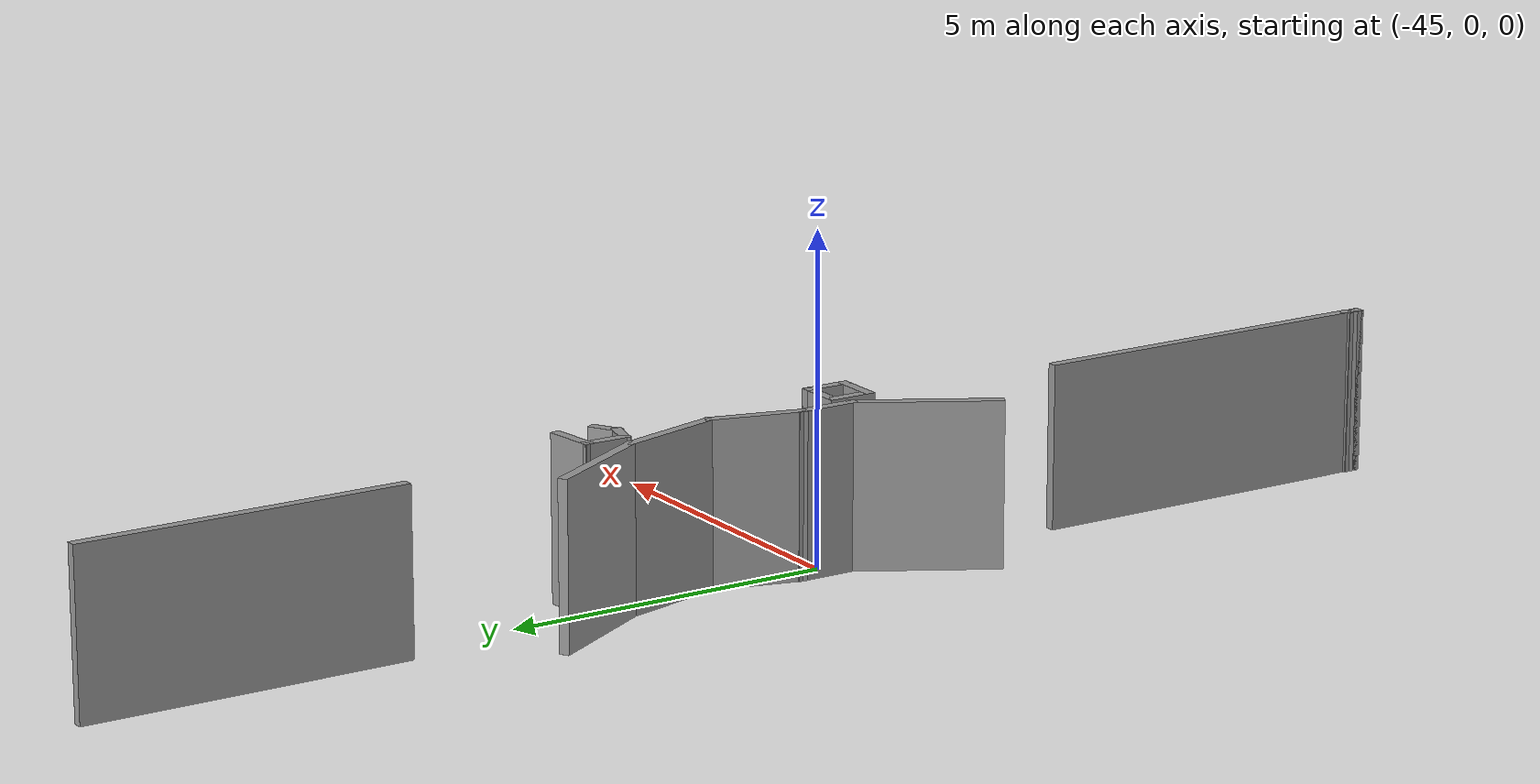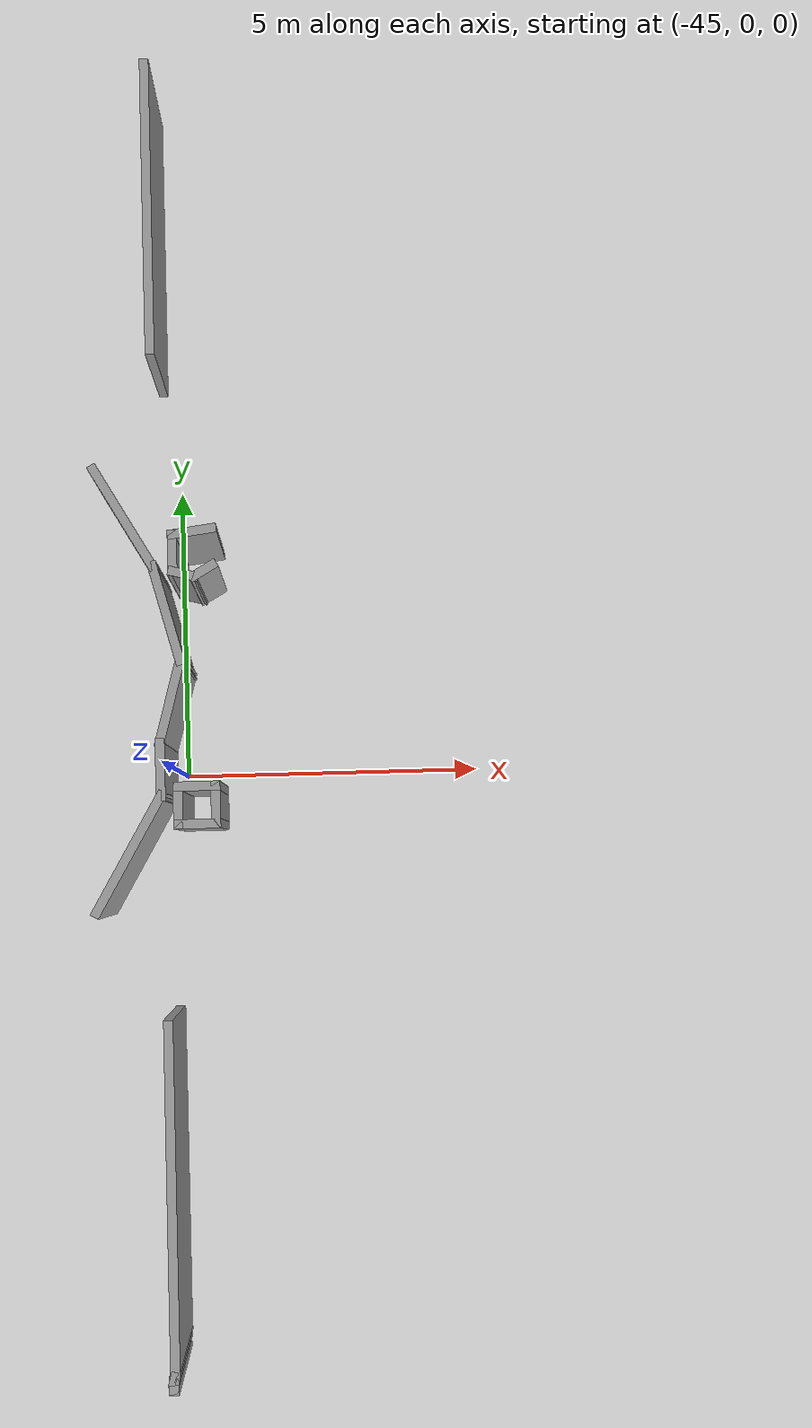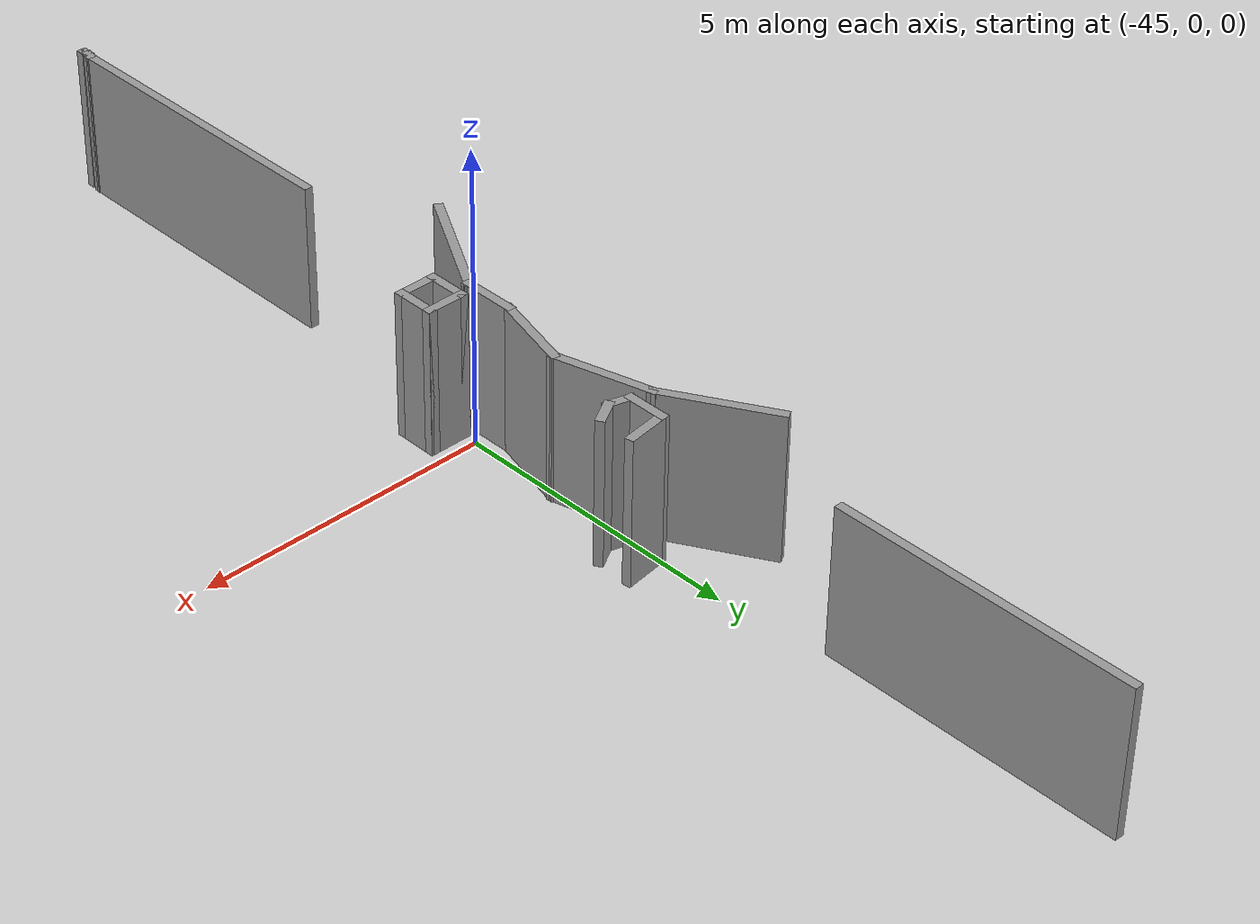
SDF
<sdf version="1.7">
 <model name="TD">
  <pose>-6.31602 -6.69767 0 0 -0 0</pose>
  <link name="Wall_123">
   <collision name="Wall_123_Collision">
    <geometry><box><size>5.5 0.15 2.5</size></box></geometry>
    <pose>0 0 1.25 0 -0 0</pose>
   </collision>
   <visual name="Wall_123_Visual">
    <pose>0 0 1.25 0 -0 0</pose>
    <geometry><box><size>5.5 0.15 2.5</size></box></geometry>
    <material>
     <script><uri>file://media/materials/scripts/gazebo.material</uri><name>Gazebo/Grey</name></script>
     <ambient>1 1 1 1</ambient>
    </material>
    <meta><layer>0</layer></meta>
   </visual>
   <pose>-38.9073 0.02178 0 0 -0 -1.5708</pose>
  </link>
  <link name="Wall_124">
   <collision name="Wall_124_Collision">
    <geometry><box><size>0.25 0.15 2.5</size></box></geometry>
    <pose>0 0 1.25 0 -0 0</pose>
   </collision>
   <visual name="Wall_124_Visual">
    <pose>0 0 1.25 0 -0 0</pose>
    <geometry><box><size>0.25 0.15 2.5</size></box></geometry>
    <material>
     <script><uri>file://media/materials/scripts/gazebo.material</uri><name>Gazebo/Grey</name></script>
     <ambient>1 1 1 1</ambient>
    </material>
    <meta><layer>0</layer></meta>
   </visual>
   <pose>-38.9202 -2.70152 0 0 -0 -1.8326</pose>
  </link>
  <link name="Wall_132">
   <collision name="Wall_132_Collision">
    <geometry><box><size>0.25 0.15 2.5</size></box></geometry>
    <pose>0 0 1.25 0 -0 0</pose>
   </collision>
   <visual name="Wall_132_Visual">
    <pose>0 0 1.25 0 -0 0</pose>
    <geometry><box><size>0.25 0.15 2.5</size></box></geometry>
    <material>
     <script><uri>file://media/materials/scripts/gazebo.material</uri><name>Gazebo/Grey</name></script>
     <ambient>1 1 1 1</ambient>
    </material>
    <meta><layer>0</layer></meta>
   </visual>
   <pose>-38.9202 -2.70152 0 0 -0 -1.8326</pose>
  </link>
  <link name="Wall_133">
   <collision name="Wall_133_Collision">
    <geometry><box><size>0.25 0.15 2.5</size></box></geometry>
    <pose>0 0 1.25 0 -0 0</pose>
   </collision>
   <visual name="Wall_133_Visual">
    <pose>0 0 1.25 0 -0 0</pose>
    <geometry><box><size>0.25 0.15 2.5</size></box></geometry>
    <material>
     <script><uri>file://media/materials/scripts/gazebo.material</uri><name>Gazebo/Grey</name></script>
     <ambient>1 1 1 1</ambient>
    </material>
    <meta><layer>0</layer></meta>
   </visual>
   <pose>-38.9332 -2.79981 0 0 -0 -1.5708</pose>
  </link>
  <link name="Wall_134">
   <collision name="Wall_134_Collision">
    <geometry><box><size>0.16 0.15 2.5</size></box></geometry>
    <pose>0 0 1.25 0 -0 0</pose>
   </collision>
   <visual name="Wall_134_Visual">
    <pose>0 0 1.25 0 -0 0</pose>
    <geometry><box><size>0.16 0.15 2.5</size></box></geometry>
    <material>
     <script><uri>file://media/materials/scripts/gazebo.material</uri><name>Gazebo/Grey</name></script>
     <ambient>1 1 1 1</ambient>
    </material>
    <meta><layer>0</layer></meta>
   </visual>
   <pose>-38.9282 -2.84981 0 0 -0 0</pose>
  </link>
  <link name="Wall_158">
   <collision name="Wall_158_Collision">
    <geometry><box><size>2 0.15 2.5</size></box></geometry>
    <pose>0 0 1.25 0 -0 0</pose>
   </collision>
   <visual name="Wall_158_Visual">
    <pose>0 0 1.25 0 -0 0</pose>
    <geometry><box><size>2 0.15 2.5</size></box></geometry>
    <material>
     <script><uri>file://media/materials/scripts/gazebo.material</uri><name>Gazebo/Grey</name></script>
     <ambient>1 1 1 1</ambient>
    </material>
    <meta><layer>0</layer></meta>
   </visual>
   <pose>-39.477 10.7957 0 0 -0 -1.0472</pose>
  </link>
  <link name="Wall_159">
   <collision name="Wall_159_Collision">
    <geometry><box><size>1.75 0.15 2.5</size></box></geometry>
    <pose>0 0 1.25 0 -0 0</pose>
   </collision>
   <visual name="Wall_159_Visual">
    <pose>0 0 1.25 0 -0 0</pose>
    <geometry><box><size>1.75 0.15 2.5</size></box></geometry>
    <material>
     <script><uri>file://media/materials/scripts/gazebo.material</uri><name>Gazebo/Grey</name></script>
     <ambient>1 1 1 1</ambient>
    </material>
    <meta><layer>0</layer></meta>
   </visual>
   <pose>-38.8075 9.22192 0 0 -0 -1.309</pose>
  </link>
  <link name="Wall_162">
   <collision name="Wall_162_Collision">
    <geometry><box><size>1.5 0.15 2.5</size></box></geometry>
    <pose>0 0 1.25 0 -0 0</pose>
   </collision>
   <visual name="Wall_162_Visual">
    <pose>0 0 1.25 0 -0 0</pose>
    <geometry><box><size>1.5 0.15 2.5</size></box></geometry>
    <material>
     <script><uri>file://media/materials/scripts/gazebo.material</uri><name>Gazebo/Grey</name></script>
     <ambient>1 1 1 1</ambient>
    </material>
    <meta><layer>0</layer></meta>
   </visual>
   <pose>-38.7751 7.79718 0 0 -0 -1.8326</pose>
  </link>
  <link name="Wall_163">
   <collision name="Wall_163_Collision">
    <geometry><box><size>1 0.15 2.5</size></box></geometry>
    <pose>0 0 1.25 0 -0 0</pose>
   </collision>
   <visual name="Wall_163_Visual">
    <pose>0 0 1.25 0 -0 0</pose>
    <geometry><box><size>1 0.15 2.5</size></box></geometry>
    <material>
     <script><uri>file://media/materials/scripts/gazebo.material</uri><name>Gazebo/Grey</name></script>
     <ambient>1 1 1 1</ambient>
    </material>
    <meta><layer>0</layer></meta>
   </visual>
   <pose>-38.9498 6.72018 0 0 -0 -1.5708</pose>
  </link>
  <link name="Wall_164">
   <collision name="Wall_164_Collision">
    <geometry><box><size>2.25 0.15 2.5</size></box></geometry>
    <pose>0 0 1.25 0 -0 0</pose>
   </collision>
   <visual name="Wall_164_Visual">
    <pose>0 0 1.25 0 -0 0</pose>
    <geometry><box><size>2.25 0.15 2.5</size></box></geometry>
    <material>
     <script><uri>file://media/materials/scripts/gazebo.material</uri><name>Gazebo/Grey</name></script>
     <ambient>1 1 1 1</ambient>
    </material>
    <meta><layer>0</layer></meta>
   </visual>
   <pose>-39.4748 5.38586 0 0 -0 -2.0944</pose>
  </link>
  <link name="Wall_254">
   <collision name="Wall_254_Collision">
    <geometry><box><size>0.75 0.15 2.5</size></box></geometry>
    <pose>0 0 1.25 0 -0 0</pose>
   </collision>
   <visual name="Wall_254_Visual">
    <pose>0 0 1.25 0 -0 0</pose>
    <geometry><box><size>0.75 0.15 2.5</size></box></geometry>
    <material>
     <script><uri>file://media/materials/scripts/gazebo.material</uri><name>Gazebo/Grey</name></script>
     <ambient>1 1 1 1</ambient>
    </material>
    <meta><layer>0</layer></meta>
   </visual>
   <pose>-38.6877 10.1974 0 0 -0 -1.5708</pose>
  </link>
  <link name="Wall_258">
   <collision name="Wall_258_Collision">
    <geometry><box><size>0.5 0.15 2.5</size></box></geometry>
    <pose>0 0 1.25 0 -0 0</pose>
   </collision>
   <visual name="Wall_258_Visual">
    <pose>0 0 1.25 0 -0 0</pose>
    <geometry><box><size>0.5 0.15 2.5</size></box></geometry>
    <material>
     <script><uri>file://media/materials/scripts/gazebo.material</uri><name>Gazebo/Grey</name></script>
     <ambient>1 1 1 1</ambient>
    </material>
    <meta><layer>0</layer></meta>
   </visual>
   <pose>-38.5186 9.85208 0 0 -0 -0.261799</pose>
  </link>
  <link name="Wall_259">
   <collision name="Wall_259_Collision">
    <geometry><box><size>0.5 0.15 2.5</size></box></geometry>
    <pose>0 0 1.25 0 -0 0</pose>
   </collision>
   <visual name="Wall_259_Visual">
    <pose>0 0 1.25 0 -0 0</pose>
    <geometry><box><size>0.5 0.15 2.5</size></box></geometry>
    <material>
     <script><uri>file://media/materials/scripts/gazebo.material</uri><name>Gazebo/Grey</name></script>
     <ambient>1 1 1 1</ambient>
    </material>
    <meta><layer>0</layer></meta>
   </visual>
   <pose>-38.1981 9.89428 0 0 -0 0.523599</pose>
  </link>
  <link name="Wall_266">
   <collision name="Wall_266_Collision">
    <geometry><box><size>0.796716 0.15 2.5</size></box></geometry>
    <pose>0 0 1.25 0 -0 0</pose>
   </collision>
   <visual name="Wall_266_Visual">
    <pose>0 0 1.25 0 -0 0</pose>
    <geometry><box><size>0.796716 0.15 2.5</size></box></geometry>
    <material>
     <script><uri>file://media/materials/scripts/gazebo.material</uri><name>Gazebo/Grey</name></script>
     <ambient>1 1 1 1</ambient>
    </material>
    <meta><layer>0</layer></meta>
   </visual>
   <pose>-38.3671 10.5396 0 0 -0 0.1309</pose>
  </link>
  <link name="Wall_271">
   <collision name="Wall_271_Collision">
    <geometry><box><size>0.75 0.15 2.5</size></box></geometry>
    <pose>0 0 1.25 0 -0 0</pose>
   </collision>
   <visual name="Wall_271_Visual">
    <pose>0 0 1.25 0 -0 0</pose>
    <geometry><box><size>0.75 0.15 2.5</size></box></geometry>
    <material>
     <script><uri>file://media/materials/scripts/gazebo.material</uri><name>Gazebo/Grey</name></script>
     <ambient>1 1 1 1</ambient>
    </material>
    <meta><layer>0</layer></meta>
   </visual>
   <pose>-38.3804 6.43621 0 0 -0 0</pose>
  </link>
  <link name="Wall_272">
   <collision name="Wall_272_Collision">
    <geometry><box><size>0.75 0.15 2.5</size></box></geometry>
    <pose>0 0 1.25 0 -0 0</pose>
   </collision>
   <visual name="Wall_272_Visual">
    <pose>0 0 1.25 0 -0 0</pose>
    <geometry><box><size>0.75 0.15 2.5</size></box></geometry>
    <material>
     <script><uri>file://media/materials/scripts/gazebo.material</uri><name>Gazebo/Grey</name></script>
     <ambient>1 1 1 1</ambient>
    </material>
    <meta><layer>0</layer></meta>
   </visual>
   <pose>-38.0804 6.13621 0 0 -0 -1.5708</pose>
  </link>
  <link name="Wall_274">
   <collision name="Wall_274_Collision">
    <geometry><box><size>0.75 0.15 2.5</size></box></geometry>
    <pose>0 0 1.25 0 -0 0</pose>
   </collision>
   <visual name="Wall_274_Visual">
    <pose>0 0 1.25 0 -0 0</pose>
    <geometry><box><size>0.75 0.15 2.5</size></box></geometry>
    <material>
     <script><uri>file://media/materials/scripts/gazebo.material</uri><name>Gazebo/Grey</name></script>
     <ambient>1 1 1 1</ambient>
    </material>
    <meta><layer>0</layer></meta>
   </visual>
   <pose>-38.6804 6.13621 0 0 -0 -1.5708</pose>
  </link>
  <link name="Wall_275">
   <collision name="Wall_275_Collision">
    <geometry><box><size>0.75 0.15 2.5</size></box></geometry>
    <pose>0 0 1.25 0 -0 0</pose>
   </collision>
   <visual name="Wall_275_Visual">
    <pose>0 0 1.25 0 -0 0</pose>
    <geometry><box><size>0.75 0.15 2.5</size></box></geometry>
    <material>
     <script><uri>file://media/materials/scripts/gazebo.material</uri><name>Gazebo/Grey</name></script>
     <ambient>1 1 1 1</ambient>
    </material>
    <meta><layer>0</layer></meta>
   </visual>
   <pose>-38.3804 5.83621 0 0 -0 0</pose>
  </link>
  <link name="Wall_67">
   <collision name="Wall_67_Collision">
    <geometry><box><size>5 0.15 2.5</size></box></geometry>
    <pose>0 0 1.25 0 -0 0</pose>
   </collision>
   <visual name="Wall_67_Visual">
    <pose>0 0 1.25 0 -0 0</pose>
    <geometry><box><size>5 0.15 2.5</size></box></geometry>
    <material>
     <script><uri>file://media/materials/scripts/gazebo.material</uri><name>Gazebo/Grey</name></script>
     <ambient>1 1 1 1</ambient>
    </material>
    <meta><layer>0</layer></meta>
   </visual>
   <pose>-38.9827 15.9729 0 0 -0 -1.5708</pose>
  </link>
  <static>1</static>
 </model>
</sdf>
